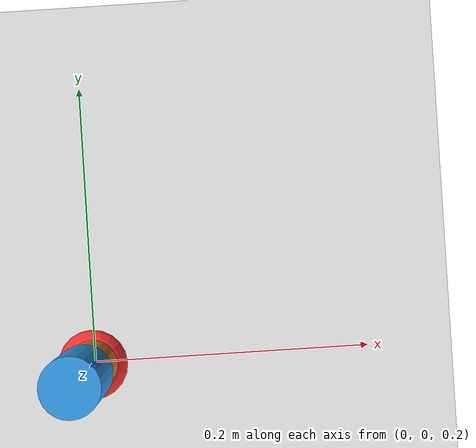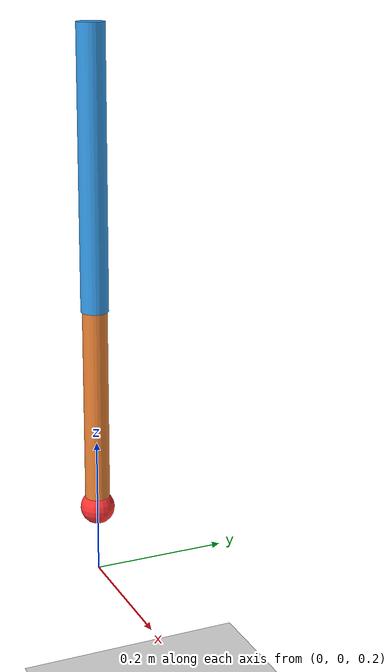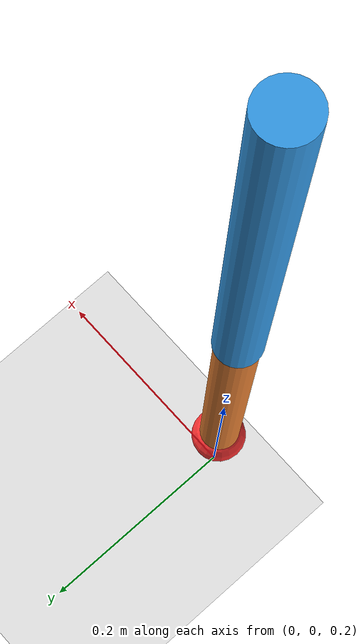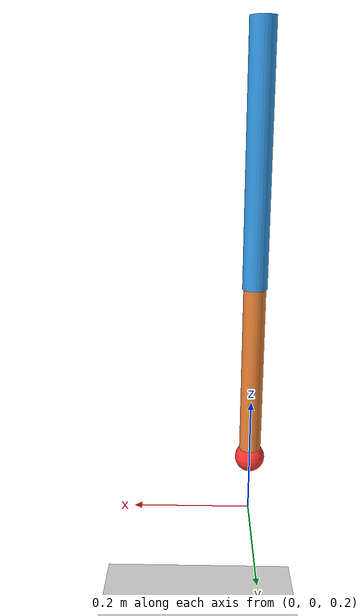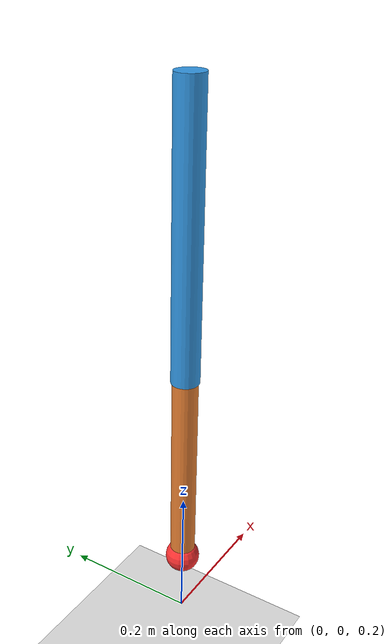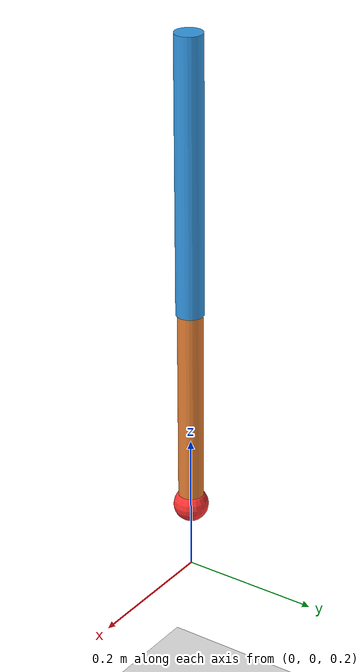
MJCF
<mujoco model="double_pendulum">
    <worldbody>
    <light diffuse=".8 .8 .8" pos="0 0 3" dir="0 0 -1"/>
    <geom type="plane" size="1 1 0.01" rgba="0.9 0.9 0.9 1"/>

    <body name="upper_arm" pos="0 0 1.0">
        <joint name="shoulder" type="hinge" axis="0 1 0" damping="0.1"/>
        <geom type="cylinder" size="0.02 0.2" pos="0 0 -0.2" mass="1.0" rgba="0.2 0.6 0.9 1"/>

        <body name="forearm" pos="0 0 -0.4">
            <joint name="elbow" type="hinge" axis="0 1 0"/>
            <geom type="cylinder" size="0.018 0.15" pos="0 0 -0.15" mass="0.8" rgba="0.9 0.5 0.2 1"/>

            <site name="fingertip" pos="0 0 -0.3" size="0.025" rgba="1 0.2 0.2 1"/>]
        </body>
    </body>

  </worldbody>
    <actuator>
    <motor name="shoulder_motor" joint="shoulder"/>
    <motor name="elbow_motor" joint="elbow"/>
  </actuator>
</mujoco>
